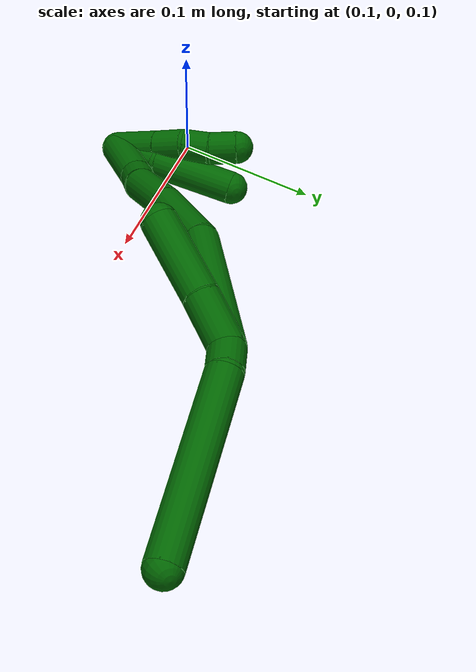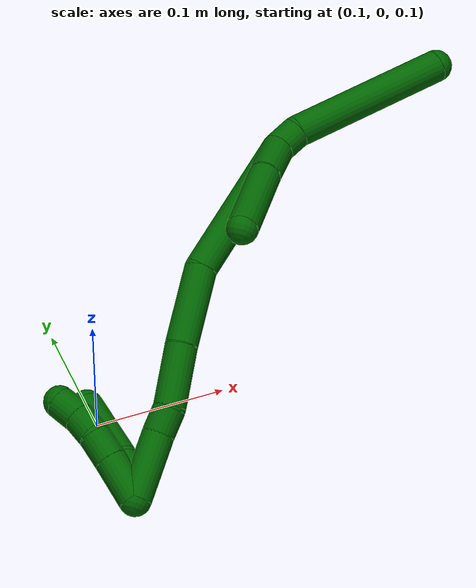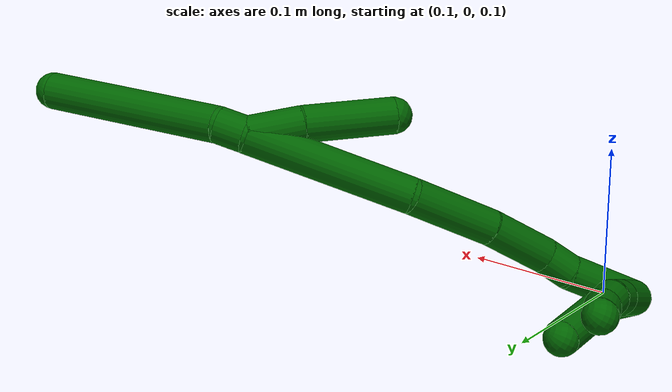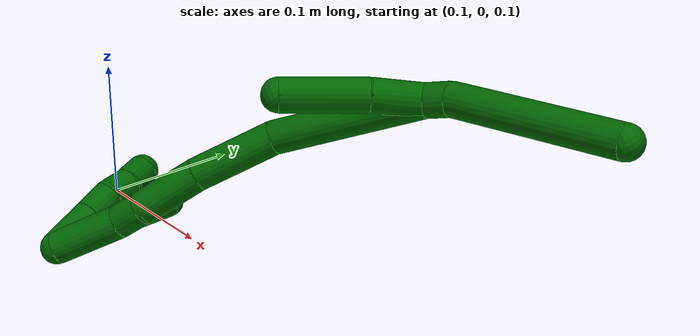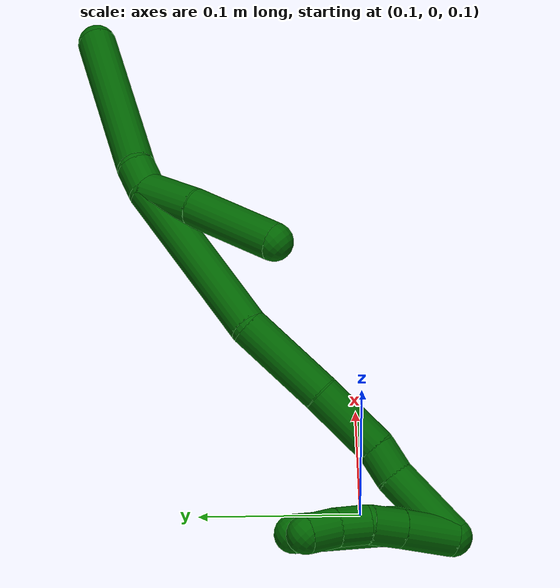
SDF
<sdf version="1.7">
 <world name="default">
  <model name="6">
   <static>0</static>
   <link name="6">
    <collision name="collision-cylinder-e_1_2_8">
     <pose>0.005094 0.000291 0.008648 -0.033656 0.53208 -0.009172</pose>
     <geometry><cylinder><radius>0.0125</radius><length>0.020082</length></cylinder></geometry>
     <surface>
      <friction><ode><mu>1.16</mu><mu2>1.16</mu2><slip1>0</slip1><slip2>0</slip2></ode></friction>
      <contact><ode><kp>1e+06</kp><kd>1</kd><max_vel>0</max_vel><min_depth>0.001</min_depth></ode></contact>
     </surface>
    </collision>
    <visual name="visual-cylinder-e_1_2_8">
     <pose>0.005094 0.000291 0.008648 -0.033656 0.53208 -0.009172</pose>
     <geometry><cylinder><radius>0.0125</radius><length>0.020082</length></cylinder></geometry>
     <material><ambient>0 0.392157 0.003922 1</ambient></material>
    </visual>
    <collision name="collision-cylinder-e_2_8_6">
     <pose>0.056187 0.0078 0.062591 -0.158026 0.786846 -0.065704</pose>
     <geometry><cylinder><radius>0.0125</radius><length>0.129918</length></cylinder></geometry>
     <surface>
      <friction><ode><mu>1.16</mu><mu2>1.16</mu2><slip1>0</slip1><slip2>0</slip2></ode></friction>
      <contact><ode><kp>1e+06</kp><kd>1</kd><max_vel>0</max_vel><min_depth>0.001</min_depth></ode></contact>
     </surface>
    </collision>
    <visual name="visual-cylinder-e_2_8_6">
     <pose>0.056187 0.0078 0.062591 -0.158026 0.786846 -0.065704</pose>
     <geometry><cylinder><radius>0.0125</radius><length>0.129918</length></cylinder></geometry>
     <material><ambient>0 0.392157 0.003922 1</ambient></material>
    </visual>
    <collision name="collision-cylinder-e_1_2_9">
     <pose>-0.003364 -0.01086 -0.015066 2.51702 -0.179174 -0.542738</pose>
     <geometry><cylinder><radius>0.0125</radius><length>0.037749</length></cylinder></geometry>
     <surface>
      <friction><ode><mu>1.16</mu><mu2>1.16</mu2><slip1>0</slip1><slip2>0</slip2></ode></friction>
      <contact><ode><kp>1e+06</kp><kd>1</kd><max_vel>0</max_vel><min_depth>0.001</min_depth></ode></contact>
     </surface>
    </collision>
    <visual name="visual-cylinder-e_1_2_9">
     <pose>-0.003364 -0.01086 -0.015066 2.51702 -0.179174 -0.542738</pose>
     <geometry><cylinder><radius>0.0125</radius><length>0.037749</length></cylinder></geometry>
     <material><ambient>0 0.392157 0.003922 1</ambient></material>
    </visual>
    <collision name="collision-cylinder-e_2_9_5">
     <pose>-0.011022 -0.037286 -0.056742 2.6123 -0.138414 -0.500829</pose>
     <geometry><cylinder><radius>0.0125</radius><length>0.062251</length></cylinder></geometry>
     <surface>
      <friction><ode><mu>1.16</mu><mu2>1.16</mu2><slip1>0</slip1><slip2>0</slip2></ode></friction>
      <contact><ode><kp>1e+06</kp><kd>1</kd><max_vel>0</max_vel><min_depth>0.001</min_depth></ode></contact>
     </surface>
    </collision>
    <visual name="visual-cylinder-e_2_9_5">
     <pose>-0.011022 -0.037286 -0.056742 2.6123 -0.138414 -0.500829</pose>
     <geometry><cylinder><radius>0.0125</radius><length>0.062251</length></cylinder></geometry>
     <material><ambient>0 0.392157 0.003922 1</ambient></material>
    </visual>
    <collision name="collision-cylinder-e_1_2_10">
     <pose>-0.015767 -0.003472 -0.055347 3.07894 -0.276999 -2.69931</pose>
     <geometry><cylinder><radius>0.0125</radius><length>0.115307</length></cylinder></geometry>
     <surface>
      <friction><ode><mu>1.16</mu><mu2>1.16</mu2><slip1>0</slip1><slip2>0</slip2></ode></friction>
      <contact><ode><kp>1e+06</kp><kd>1</kd><max_vel>0</max_vel><min_depth>0.001</min_depth></ode></contact>
     </surface>
    </collision>
    <visual name="visual-cylinder-e_1_2_10">
     <pose>-0.015767 -0.003472 -0.055347 3.07894 -0.276999 -2.69931</pose>
     <geometry><cylinder><radius>0.0125</radius><length>0.115307</length></cylinder></geometry>
     <material><ambient>0 0.392157 0.003922 1</ambient></material>
    </visual>
    <collision name="collision-cylinder-e_2_10_11">
     <pose>-0.030601 -0.009323 -0.141711 3.06506 0.029964 0.746044</pose>
     <geometry><cylinder><radius>0.0125</radius><length>0.062243</length></cylinder></geometry>
     <surface>
      <friction><ode><mu>1.16</mu><mu2>1.16</mu2><slip1>0</slip1><slip2>0</slip2></ode></friction>
      <contact><ode><kp>1e+06</kp><kd>1</kd><max_vel>0</max_vel><min_depth>0.001</min_depth></ode></contact>
     </surface>
    </collision>
    <visual name="visual-cylinder-e_2_10_11">
     <pose>-0.030601 -0.009323 -0.141711 3.06506 0.029964 0.746044</pose>
     <geometry><cylinder><radius>0.0125</radius><length>0.062243</length></cylinder></geometry>
     <material><ambient>0 0.392157 0.003922 1</ambient></material>
    </visual>
    <collision name="collision-cylinder-e_3_11_12">
     <pose>-0.027351 -0.011719 -0.196694 3.14089 0.096387 3.12705</pose>
     <geometry><cylinder><radius>0.0125</radius><length>0.048156</length></cylinder></geometry>
     <surface>
      <friction><ode><mu>1.16</mu><mu2>1.16</mu2><slip1>0</slip1><slip2>0</slip2></ode></friction>
      <contact><ode><kp>1e+06</kp><kd>1</kd><max_vel>0</max_vel><min_depth>0.001</min_depth></ode></contact>
     </surface>
    </collision>
    <visual name="visual-cylinder-e_3_11_12">
     <pose>-0.027351 -0.011719 -0.196694 3.14089 0.096387 3.12705</pose>
     <geometry><cylinder><radius>0.0125</radius><length>0.048156</length></cylinder></geometry>
     <material><ambient>0 0.392157 0.003922 1</ambient></material>
    </visual>
    <collision name="collision-cylinder-e_4_12_13">
     <pose>-0.026129 -0.010229 -0.231279 -3.00072 -0.101762 1.25038</pose>
     <geometry><cylinder><radius>0.0125</radius><length>0.021562</length></cylinder></geometry>
     <surface>
      <friction><ode><mu>1.16</mu><mu2>1.16</mu2><slip1>0</slip1><slip2>0</slip2></ode></friction>
      <contact><ode><kp>1e+06</kp><kd>1</kd><max_vel>0</max_vel><min_depth>0.001</min_depth></ode></contact>
     </surface>
    </collision>
    <visual name="visual-cylinder-e_4_12_13">
     <pose>-0.026129 -0.010229 -0.231279 -3.00072 -0.101762 1.25038</pose>
     <geometry><cylinder><radius>0.0125</radius><length>0.021562</length></cylinder></geometry>
     <material><ambient>0 0.392157 0.003922 1</ambient></material>
    </visual>
    <collision name="collision-cylinder-e_5_13_1">
     <pose>-0.028759 -0.010342 -0.268169 3.08007 -0.05824 -1.51601</pose>
     <geometry><cylinder><radius>0.0125</radius><length>0.052732</length></cylinder></geometry>
     <surface>
      <friction><ode><mu>1.16</mu><mu2>1.16</mu2><slip1>0</slip1><slip2>0</slip2></ode></friction>
      <contact><ode><kp>1e+06</kp><kd>1</kd><max_vel>0</max_vel><min_depth>0.001</min_depth></ode></contact>
     </surface>
    </collision>
    <visual name="visual-cylinder-e_5_13_1">
     <pose>-0.028759 -0.010342 -0.268169 3.08007 -0.05824 -1.51601</pose>
     <geometry><cylinder><radius>0.0125</radius><length>0.052732</length></cylinder></geometry>
     <material><ambient>0 0.392157 0.003922 1</ambient></material>
    </visual>
    <collision name="collision-cylinder-e_1_1_14">
     <pose>-0.042729 -0.007786 -0.282132 -0.326952 -0.763355 0.132214</pose>
     <geometry><cylinder><radius>0.0125</radius><length>0.035975</length></cylinder></geometry>
     <surface>
      <friction><ode><mu>1.16</mu><mu2>1.16</mu2><slip1>0</slip1><slip2>0</slip2></ode></friction>
      <contact><ode><kp>1e+06</kp><kd>1</kd><max_vel>0</max_vel><min_depth>0.001</min_depth></ode></contact>
     </surface>
    </collision>
    <visual name="visual-cylinder-e_1_1_14">
     <pose>-0.042729 -0.007786 -0.282132 -0.326952 -0.763355 0.132214</pose>
     <geometry><cylinder><radius>0.0125</radius><length>0.035975</length></cylinder></geometry>
     <material><ambient>0 0.392157 0.003922 1</ambient></material>
    </visual>
    <collision name="collision-cylinder-e_2_14_15">
     <pose>-0.063212 -0.000965 -0.262332 -0.339683 -0.791706 0.143094</pose>
     <geometry><cylinder><radius>0.0125</radius><length>0.022618</length></cylinder></geometry>
     <surface>
      <friction><ode><mu>1.16</mu><mu2>1.16</mu2><slip1>0</slip1><slip2>0</slip2></ode></friction>
      <contact><ode><kp>1e+06</kp><kd>1</kd><max_vel>0</max_vel><min_depth>0.001</min_depth></ode></contact>
     </surface>
    </collision>
    <visual name="visual-cylinder-e_2_14_15">
     <pose>-0.063212 -0.000965 -0.262332 -0.339683 -0.791706 0.143094</pose>
     <geometry><cylinder><radius>0.0125</radius><length>0.022618</length></cylinder></geometry>
     <material><ambient>0 0.392157 0.003922 1</ambient></material>
    </visual>
    <collision name="collision-cylinder-e_3_15_16">
     <pose>-0.078093 0.006657 -0.249134 -0.716902 -0.734383 0.286226</pose>
     <geometry><cylinder><radius>0.0125</radius><length>0.020398</length></cylinder></geometry>
     <surface>
      <friction><ode><mu>1.16</mu><mu2>1.16</mu2><slip1>0</slip1><slip2>0</slip2></ode></friction>
      <contact><ode><kp>1e+06</kp><kd>1</kd><max_vel>0</max_vel><min_depth>0.001</min_depth></ode></contact>
     </surface>
    </collision>
    <visual name="visual-cylinder-e_3_15_16">
     <pose>-0.078093 0.006657 -0.249134 -0.716902 -0.734383 0.286226</pose>
     <geometry><cylinder><radius>0.0125</radius><length>0.020398</length></cylinder></geometry>
     <material><ambient>0 0.392157 0.003922 1</ambient></material>
    </visual>
    <collision name="collision-cylinder-e_4_16_4">
     <pose>-0.093346 0.016129 -0.239041 -0.798096 -0.929668 0.416783</pose>
     <geometry><cylinder><radius>0.0125</radius><length>0.021009</length></cylinder></geometry>
     <surface>
      <friction><ode><mu>1.16</mu><mu2>1.16</mu2><slip1>0</slip1><slip2>0</slip2></ode></friction>
      <contact><ode><kp>1e+06</kp><kd>1</kd><max_vel>0</max_vel><min_depth>0.001</min_depth></ode></contact>
     </surface>
    </collision>
    <visual name="visual-cylinder-e_4_16_4">
     <pose>-0.093346 0.016129 -0.239041 -0.798096 -0.929668 0.416783</pose>
     <geometry><cylinder><radius>0.0125</radius><length>0.021009</length></cylinder></geometry>
     <material><ambient>0 0.392157 0.003922 1</ambient></material>
    </visual>
    <collision name="collision-cylinder-e_1_1_17">
     <pose>-0.038689 -0.004049 -0.279639 -0.490847 -0.46386 0.118176</pose>
     <geometry><cylinder><radius>0.0125</radius><length>0.037532</length></cylinder></geometry>
     <surface>
      <friction><ode><mu>1.16</mu><mu2>1.16</mu2><slip1>0</slip1><slip2>0</slip2></ode></friction>
      <contact><ode><kp>1e+06</kp><kd>1</kd><max_vel>0</max_vel><min_depth>0.001</min_depth></ode></contact>
     </surface>
    </collision>
    <visual name="visual-cylinder-e_1_1_17">
     <pose>-0.038689 -0.004049 -0.279639 -0.490847 -0.46386 0.118176</pose>
     <geometry><cylinder><radius>0.0125</radius><length>0.037532</length></cylinder></geometry>
     <material><ambient>0 0.392157 0.003922 1</ambient></material>
    </visual>
    <collision name="collision-cylinder-e_2_17_3">
     <pose>-0.06336 0.022621 -0.245895 -0.780549 -0.548068 0.230258</pose>
     <geometry><cylinder><radius>0.0125</radius><length>0.062468</length></cylinder></geometry>
     <surface>
      <friction><ode><mu>1.16</mu><mu2>1.16</mu2><slip1>0</slip1><slip2>0</slip2></ode></friction>
      <contact><ode><kp>1e+06</kp><kd>1</kd><max_vel>0</max_vel><min_depth>0.001</min_depth></ode></contact>
     </surface>
    </collision>
    <visual name="visual-cylinder-e_2_17_3">
     <pose>-0.06336 0.022621 -0.245895 -0.780549 -0.548068 0.230258</pose>
     <geometry><cylinder><radius>0.0125</radius><length>0.062468</length></cylinder></geometry>
     <material><ambient>0 0.392157 0.003922 1</ambient></material>
    </visual>
    <collision name="collision-sphere-3">
     <pose>-0.079634 0.041381 -0.226953 0 -0 0</pose>
     <geometry><sphere><radius>0.0125</radius></sphere></geometry>
     <surface>
      <friction><ode><mu>1.16</mu><mu2>1.16</mu2><slip1>0</slip1><slip2>0</slip2></ode></friction>
      <contact><ode><kp>1e+06</kp><kd>1</kd><max_vel>0</max_vel><min_depth>0.001</min_depth></ode></contact>
     </surface>
    </collision>
    <visual name="visual-sphere-3">
     <pose>-0.079634 0.041381 -0.226953 0 -0 0</pose>
     <geometry><sphere><radius>0.0125</radius></sphere></geometry>
     <material><ambient>0 0.392157 0.003922 1</ambient></material>
    </visual>
    <collision name="collision-sphere-17">
     <pose>-0.047085 0.003862 -0.264837 0 -0 0</pose>
     <geometry><sphere><radius>0.0125</radius></sphere></geometry>
     <surface>
      <friction><ode><mu>1.16</mu><mu2>1.16</mu2><slip1>0</slip1><slip2>0</slip2></ode></friction>
      <contact><ode><kp>1e+06</kp><kd>1</kd><max_vel>0</max_vel><min_depth>0.001</min_depth></ode></contact>
     </surface>
    </collision>
    <visual name="visual-sphere-17">
     <pose>-0.047085 0.003862 -0.264837 0 -0 0</pose>
     <geometry><sphere><radius>0.0125</radius></sphere></geometry>
     <material><ambient>0 0.392157 0.003922 1</ambient></material>
    </visual>
    <collision name="collision-sphere-4">
     <pose>-0.101765 0.020628 -0.234655 0 -0 0</pose>
     <geometry><sphere><radius>0.0125</radius></sphere></geometry>
     <surface>
      <friction><ode><mu>1.16</mu><mu2>1.16</mu2><slip1>0</slip1><slip2>0</slip2></ode></friction>
      <contact><ode><kp>1e+06</kp><kd>1</kd><max_vel>0</max_vel><min_depth>0.001</min_depth></ode></contact>
     </surface>
    </collision>
    <visual name="visual-sphere-4">
     <pose>-0.101765 0.020628 -0.234655 0 -0 0</pose>
     <geometry><sphere><radius>0.0125</radius></sphere></geometry>
     <material><ambient>0 0.392157 0.003922 1</ambient></material>
    </visual>
    <collision name="collision-sphere-16">
     <pose>-0.084928 0.011631 -0.243427 0 -0 0</pose>
     <geometry><sphere><radius>0.0125</radius></sphere></geometry>
     <surface>
      <friction><ode><mu>1.16</mu><mu2>1.16</mu2><slip1>0</slip1><slip2>0</slip2></ode></friction>
      <contact><ode><kp>1e+06</kp><kd>1</kd><max_vel>0</max_vel><min_depth>0.001</min_depth></ode></contact>
     </surface>
    </collision>
    <visual name="visual-sphere-16">
     <pose>-0.084928 0.011631 -0.243427 0 -0 0</pose>
     <geometry><sphere><radius>0.0125</radius></sphere></geometry>
     <material><ambient>0 0.392157 0.003922 1</ambient></material>
    </visual>
    <collision name="collision-sphere-15">
     <pose>-0.071259 0.001683 -0.25484 0 -0 0</pose>
     <geometry><sphere><radius>0.0125</radius></sphere></geometry>
     <surface>
      <friction><ode><mu>1.16</mu><mu2>1.16</mu2><slip1>0</slip1><slip2>0</slip2></ode></friction>
      <contact><ode><kp>1e+06</kp><kd>1</kd><max_vel>0</max_vel><min_depth>0.001</min_depth></ode></contact>
     </surface>
    </collision>
    <visual name="visual-sphere-15">
     <pose>-0.071259 0.001683 -0.25484 0 -0 0</pose>
     <geometry><sphere><radius>0.0125</radius></sphere></geometry>
     <material><ambient>0 0.392157 0.003922 1</ambient></material>
    </visual>
    <collision name="collision-sphere-14">
     <pose>-0.055165 -0.003612 -0.269824 0 -0 0</pose>
     <geometry><sphere><radius>0.0125</radius></sphere></geometry>
     <surface>
      <friction><ode><mu>1.16</mu><mu2>1.16</mu2><slip1>0</slip1><slip2>0</slip2></ode></friction>
      <contact><ode><kp>1e+06</kp><kd>1</kd><max_vel>0</max_vel><min_depth>0.001</min_depth></ode></contact>
     </surface>
    </collision>
    <visual name="visual-sphere-14">
     <pose>-0.055165 -0.003612 -0.269824 0 -0 0</pose>
     <geometry><sphere><radius>0.0125</radius></sphere></geometry>
     <material><ambient>0 0.392157 0.003922 1</ambient></material>
    </visual>
    <collision name="collision-sphere-1">
     <pose>-0.030294 -0.01196 -0.29444 0 -0 0</pose>
     <geometry><sphere><radius>0.0125</radius></sphere></geometry>
     <surface>
      <friction><ode><mu>1.16</mu><mu2>1.16</mu2><slip1>0</slip1><slip2>0</slip2></ode></friction>
      <contact><ode><kp>1e+06</kp><kd>1</kd><max_vel>0</max_vel><min_depth>0.001</min_depth></ode></contact>
     </surface>
    </collision>
    <visual name="visual-sphere-1">
     <pose>-0.030294 -0.01196 -0.29444 0 -0 0</pose>
     <geometry><sphere><radius>0.0125</radius></sphere></geometry>
     <material><ambient>0 0.392157 0.003922 1</ambient></material>
    </visual>
    <collision name="collision-sphere-13">
     <pose>-0.027224 -0.008724 -0.241898 0 -0 0</pose>
     <geometry><sphere><radius>0.0125</radius></sphere></geometry>
     <surface>
      <friction><ode><mu>1.16</mu><mu2>1.16</mu2><slip1>0</slip1><slip2>0</slip2></ode></friction>
      <contact><ode><kp>1e+06</kp><kd>1</kd><max_vel>0</max_vel><min_depth>0.001</min_depth></ode></contact>
     </surface>
    </collision>
    <visual name="visual-sphere-13">
     <pose>-0.027224 -0.008724 -0.241898 0 -0 0</pose>
     <geometry><sphere><radius>0.0125</radius></sphere></geometry>
     <material><ambient>0 0.392157 0.003922 1</ambient></material>
    </visual>
    <collision name="collision-sphere-12">
     <pose>-0.025034 -0.011735 -0.22066 0 -0 0</pose>
     <geometry><sphere><radius>0.0125</radius></sphere></geometry>
     <surface>
      <friction><ode><mu>1.16</mu><mu2>1.16</mu2><slip1>0</slip1><slip2>0</slip2></ode></friction>
      <contact><ode><kp>1e+06</kp><kd>1</kd><max_vel>0</max_vel><min_depth>0.001</min_depth></ode></contact>
     </surface>
    </collision>
    <visual name="visual-sphere-12">
     <pose>-0.025034 -0.011735 -0.22066 0 -0 0</pose>
     <geometry><sphere><radius>0.0125</radius></sphere></geometry>
     <material><ambient>0 0.392157 0.003922 1</ambient></material>
    </visual>
    <collision name="collision-sphere-11">
     <pose>-0.029668 -0.011702 -0.172728 0 -0 0</pose>
     <geometry><sphere><radius>0.0125</radius></sphere></geometry>
     <surface>
      <friction><ode><mu>1.16</mu><mu2>1.16</mu2><slip1>0</slip1><slip2>0</slip2></ode></friction>
      <contact><ode><kp>1e+06</kp><kd>1</kd><max_vel>0</max_vel><min_depth>0.001</min_depth></ode></contact>
     </surface>
    </collision>
    <visual name="visual-sphere-11">
     <pose>-0.029668 -0.011702 -0.172728 0 -0 0</pose>
     <geometry><sphere><radius>0.0125</radius></sphere></geometry>
     <material><ambient>0 0.392157 0.003922 1</ambient></material>
    </visual>
    <collision name="collision-sphere-8">
     <pose>0.010188 0.000582 0.017296 0 -0 0</pose>
     <geometry><sphere><radius>0.0125</radius></sphere></geometry>
     <surface>
      <friction><ode><mu>1.16</mu><mu2>1.16</mu2><slip1>0</slip1><slip2>0</slip2></ode></friction>
      <contact><ode><kp>1e+06</kp><kd>1</kd><max_vel>0</max_vel><min_depth>0.001</min_depth></ode></contact>
     </surface>
    </collision>
    <visual name="visual-sphere-8">
     <pose>0.010188 0.000582 0.017296 0 -0 0</pose>
     <geometry><sphere><radius>0.0125</radius></sphere></geometry>
     <material><ambient>0 0.392157 0.003922 1</ambient></material>
    </visual>
    <collision name="collision-sphere-2">
     <geometry><sphere><radius>0.0125</radius></sphere></geometry>
     <surface>
      <friction><ode><mu>1.16</mu><mu2>1.16</mu2><slip1>0</slip1><slip2>0</slip2></ode></friction>
      <contact><ode><kp>1e+06</kp><kd>1</kd><max_vel>0</max_vel><min_depth>0.001</min_depth></ode></contact>
     </surface>
    </collision>
    <visual name="visual-sphere-2">
     <geometry><sphere><radius>0.0125</radius></sphere></geometry>
     <material><ambient>0 0.392157 0.003922 1</ambient></material>
    </visual>
    <collision name="collision-sphere-9">
     <pose>-0.006727 -0.02172 -0.030132 0 -0 0</pose>
     <geometry><sphere><radius>0.0125</radius></sphere></geometry>
     <surface>
      <friction><ode><mu>1.16</mu><mu2>1.16</mu2><slip1>0</slip1><slip2>0</slip2></ode></friction>
      <contact><ode><kp>1e+06</kp><kd>1</kd><max_vel>0</max_vel><min_depth>0.001</min_depth></ode></contact>
     </surface>
    </collision>
    <visual name="visual-sphere-9">
     <pose>-0.006727 -0.02172 -0.030132 0 -0 0</pose>
     <geometry><sphere><radius>0.0125</radius></sphere></geometry>
     <material><ambient>0 0.392157 0.003922 1</ambient></material>
    </visual>
    <collision name="collision-sphere-6">
     <pose>0.102187 0.015018 0.107886 0 -0 0</pose>
     <geometry><sphere><radius>0.0125</radius></sphere></geometry>
     <surface>
      <friction><ode><mu>1.16</mu><mu2>1.16</mu2><slip1>0</slip1><slip2>0</slip2></ode></friction>
      <contact><ode><kp>1e+06</kp><kd>1</kd><max_vel>0</max_vel><min_depth>0.001</min_depth></ode></contact>
     </surface>
    </collision>
    <visual name="visual-sphere-6">
     <pose>0.102187 0.015018 0.107886 0 -0 0</pose>
     <geometry><sphere><radius>0.0125</radius></sphere></geometry>
     <material><ambient>0 0.392157 0.003922 1</ambient></material>
    </visual>
    <collision name="collision-sphere-5">
     <pose>-0.015316 -0.052851 -0.083351 0 -0 0</pose>
     <geometry><sphere><radius>0.0125</radius></sphere></geometry>
     <surface>
      <friction><ode><mu>1.16</mu><mu2>1.16</mu2><slip1>0</slip1><slip2>0</slip2></ode></friction>
      <contact><ode><kp>1e+06</kp><kd>1</kd><max_vel>0</max_vel><min_depth>0.001</min_depth></ode></contact>
     </surface>
    </collision>
    <visual name="visual-sphere-5">
     <pose>-0.015316 -0.052851 -0.083351 0 -0 0</pose>
     <geometry><sphere><radius>0.0125</radius></sphere></geometry>
     <material><ambient>0 0.392157 0.003922 1</ambient></material>
    </visual>
    <collision name="collision-sphere-10">
     <pose>-0.031533 -0.006945 -0.110694 0 -0 0</pose>
     <geometry><sphere><radius>0.0125</radius></sphere></geometry>
     <surface>
      <friction><ode><mu>1.16</mu><mu2>1.16</mu2><slip1>0</slip1><slip2>0</slip2></ode></friction>
      <contact><ode><kp>1e+06</kp><kd>1</kd><max_vel>0</max_vel><min_depth>0.001</min_depth></ode></contact>
     </surface>
    </collision>
    <visual name="visual-sphere-10">
     <pose>-0.031533 -0.006945 -0.110694 0 -0 0</pose>
     <geometry><sphere><radius>0.0125</radius></sphere></geometry>
     <material><ambient>0 0.392157 0.003922 1</ambient></material>
    </visual>
    <inertial>
     <pose>-0.016616 -0.003452 -0.122188 0 -0 0</pose>
     <mass>0.75</mass>
     <inertia><ixx>8e-06</ixx><ixy>0</ixy><ixz>0</ixz><iyy>0.000249</iyy><iyz>0</iyz><izz>-9.9e-05</izz></inertia>
    </inertial>
   </link>
   <pose>0.297045 0.129951 0.20349 -1.01461 0.308878 -0.510118</pose>
  </model>
 </world>
</sdf>
